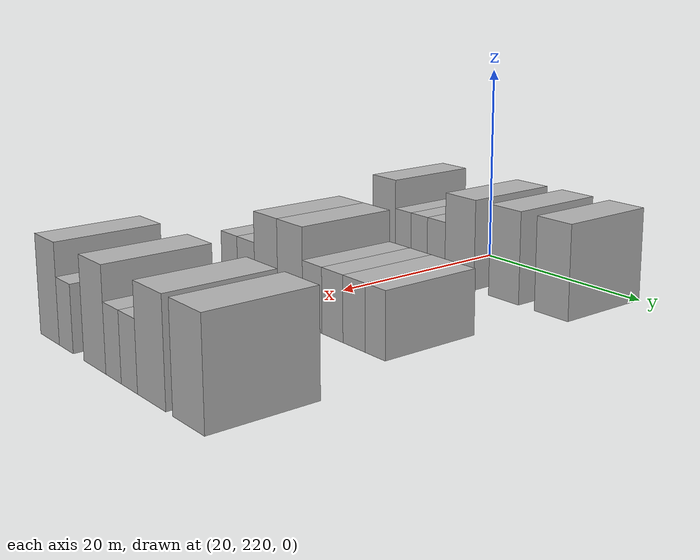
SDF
<sdf version="1.6">
 <world name="default">
  <model name="building_108">
   <static>1</static>
   <pose>25.0000 214.1568 0 0.000000 0.000000 0.000000</pose>
   <link name="link">
    <pose>0 0 4.50 0 0 0</pose>
    <collision name="collision"><geometry><box><size>10.0000 3.6910 9.0000</size></box></geometry></collision>
    <visual name="visual">
     <cast_shadows>0</cast_shadows>
     <geometry><box><size>10.0000 3.6910 9.0000</size></box></geometry>
     <material>
      <script>
       <uri>model://HANNAS_wall/materials/scripts</uri>
       <uri>model://HANNAS_wall/materials/textures</uri>
       <name>vrc/HANNAS_wall</name>
      </script>
     </material>
    </visual>
   </link>
  </model>
  <model name="building_109">
   <static>1</static>
   <pose>25.0000 217.2474 0 0.000000 0.000000 0.000000</pose>
   <link name="link">
    <pose>0 0 3.00 0 0 0</pose>
    <collision name="collision"><geometry><box><size>10.0000 2.4903 6.0000</size></box></geometry></collision>
    <visual name="visual">
     <cast_shadows>0</cast_shadows>
     <geometry><box><size>10.0000 2.4903 6.0000</size></box></geometry>
     <material>
      <script>
       <uri>model://HANNAS_wall/materials/scripts</uri>
       <uri>model://HANNAS_wall/materials/textures</uri>
       <name>vrc/HANNAS_wall</name>
      </script>
     </material>
    </visual>
   </link>
  </model>
  <model name="building_110">
   <static>1</static>
   <pose>25.0000 219.7412 0 0.000000 0.000000 0.000000</pose>
   <link name="link">
    <pose>0 0 3.00 0 0 0</pose>
    <collision name="collision"><geometry><box><size>10.0000 2.4972 6.0000</size></box></geometry></collision>
    <visual name="visual">
     <cast_shadows>0</cast_shadows>
     <geometry><box><size>10.0000 2.4972 6.0000</size></box></geometry>
     <material>
      <script>
       <uri>model://HANNAS_wall/materials/scripts</uri>
       <uri>model://HANNAS_wall/materials/textures</uri>
       <name>vrc/HANNAS_wall</name>
      </script>
     </material>
    </visual>
   </link>
  </model>
  <model name="building_111">
   <static>1</static>
   <pose>25.0000 222.3231 0 0.000000 0.000000 0.000000</pose>
   <link name="link">
    <pose>0 0 3.00 0 0 0</pose>
    <collision name="collision"><geometry><box><size>10.0000 2.6667 6.0000</size></box></geometry></collision>
    <visual name="visual">
     <cast_shadows>0</cast_shadows>
     <geometry><box><size>10.0000 2.6667 6.0000</size></box></geometry>
     <material>
      <script>
       <uri>model://HANNAS_wall/materials/scripts</uri>
       <uri>model://HANNAS_wall/materials/textures</uri>
       <name>vrc/HANNAS_wall</name>
      </script>
     </material>
    </visual>
   </link>
  </model>
  <model name="building_112">
   <static>1</static>
   <pose>25.0000 225.7544 0 0.000000 0.000000 0.000000</pose>
   <link name="link">
    <pose>0 0 4.50 0 0 0</pose>
    <collision name="collision"><geometry><box><size>10.0000 4.1959 9.0000</size></box></geometry></collision>
    <visual name="visual">
     <cast_shadows>0</cast_shadows>
     <geometry><box><size>10.0000 4.1959 9.0000</size></box></geometry>
     <material>
      <script>
       <uri>model://HANNAS_wall/materials/scripts</uri>
       <uri>model://HANNAS_wall/materials/textures</uri>
       <name>vrc/HANNAS_wall</name>
      </script>
     </material>
    </visual>
   </link>
  </model>
  <model name="building_113">
   <static>1</static>
   <pose>25.0000 231.8361 0 0.000000 0.000000 0.000000</pose>
   <link name="link">
    <pose>0 0 4.50 0 0 0</pose>
    <collision name="collision"><geometry><box><size>10.0000 3.9677 9.0000</size></box></geometry></collision>
    <visual name="visual">
     <cast_shadows>0</cast_shadows>
     <geometry><box><size>10.0000 3.9677 9.0000</size></box></geometry>
     <material>
      <script>
       <uri>model://HANNAS_wall/materials/scripts</uri>
       <uri>model://HANNAS_wall/materials/textures</uri>
       <name>vrc/HANNAS_wall</name>
      </script>
     </material>
    </visual>
   </link>
  </model>
  <model name="building_114">
   <static>1</static>
   <pose>25.0000 237.8687 0 0.000000 0.000000 0.000000</pose>
   <link name="link">
    <pose>0 0 4.50 0 0 0</pose>
    <collision name="collision"><geometry><box><size>10.0000 4.0975 9.0000</size></box></geometry></collision>
    <visual name="visual">
     <cast_shadows>0</cast_shadows>
     <geometry><box><size>10.0000 4.0975 9.0000</size></box></geometry>
     <material>
      <script>
       <uri>model://HANNAS_wall/materials/scripts</uri>
       <uri>model://HANNAS_wall/materials/textures</uri>
       <name>vrc/HANNAS_wall</name>
      </script>
     </material>
    </visual>
   </link>
  </model>
  <model name="building_226">
   <static>1</static>
   <pose>44.0000 213.8315 0 0.000000 0.000000 0.000000</pose>
   <link name="link">
    <pose>0 0 3.00 0 0 0</pose>
    <collision name="collision"><geometry><box><size>10.0000 2.7948 6.0000</size></box></geometry></collision>
    <visual name="visual">
     <cast_shadows>0</cast_shadows>
     <geometry><box><size>10.0000 2.7948 6.0000</size></box></geometry>
     <material>
      <script>
       <uri>model://HANNAS_wall/materials/scripts</uri>
       <uri>model://HANNAS_wall/materials/textures</uri>
       <name>vrc/HANNAS_wall</name>
      </script>
     </material>
    </visual>
   </link>
  </model>
  <model name="building_227">
   <static>1</static>
   <pose>44.0000 216.7019 0 0.000000 0.000000 0.000000</pose>
   <link name="link">
    <pose>0 0 3.00 0 0 0</pose>
    <collision name="collision"><geometry><box><size>10.0000 2.9460 6.0000</size></box></geometry></collision>
    <visual name="visual">
     <cast_shadows>0</cast_shadows>
     <geometry><box><size>10.0000 2.9460 6.0000</size></box></geometry>
     <material>
      <script>
       <uri>model://HANNAS_wall/materials/scripts</uri>
       <uri>model://HANNAS_wall/materials/textures</uri>
       <name>vrc/HANNAS_wall</name>
      </script>
     </material>
    </visual>
   </link>
  </model>
  <model name="building_228">
   <static>1</static>
   <pose>44.0000 220.0485 0 0.000000 0.000000 0.000000</pose>
   <link name="link">
    <pose>0 0 4.50 0 0 0</pose>
    <collision name="collision"><geometry><box><size>10.0000 3.7472 9.0000</size></box></geometry></collision>
    <visual name="visual">
     <cast_shadows>0</cast_shadows>
     <geometry><box><size>10.0000 3.7472 9.0000</size></box></geometry>
     <material>
      <script>
       <uri>model://HANNAS_wall/materials/scripts</uri>
       <uri>model://HANNAS_wall/materials/textures</uri>
       <name>vrc/HANNAS_wall</name>
      </script>
     </material>
    </visual>
   </link>
  </model>
  <model name="building_229">
   <static>1</static>
   <pose>44.0000 223.8509 0 0.000000 0.000000 0.000000</pose>
   <link name="link">
    <pose>0 0 4.50 0 0 0</pose>
    <collision name="collision"><geometry><box><size>10.0000 3.8575 9.0000</size></box></geometry></collision>
    <visual name="visual">
     <cast_shadows>0</cast_shadows>
     <geometry><box><size>10.0000 3.8575 9.0000</size></box></geometry>
     <material>
      <script>
       <uri>model://HANNAS_wall/materials/scripts</uri>
       <uri>model://HANNAS_wall/materials/textures</uri>
       <name>vrc/HANNAS_wall</name>
      </script>
     </material>
    </visual>
   </link>
  </model>
  <model name="building_230">
   <static>1</static>
   <pose>44.0000 227.1933 0 0.000000 0.000000 0.000000</pose>
   <link name="link">
    <pose>0 0 3.00 0 0 0</pose>
    <collision name="collision"><geometry><box><size>10.0000 2.8275 6.0000</size></box></geometry></collision>
    <visual name="visual">
     <cast_shadows>0</cast_shadows>
     <geometry><box><size>10.0000 2.8275 6.0000</size></box></geometry>
     <material>
      <script>
       <uri>model://HANNAS_wall/materials/scripts</uri>
       <uri>model://HANNAS_wall/materials/textures</uri>
       <name>vrc/HANNAS_wall</name>
      </script>
     </material>
    </visual>
   </link>
  </model>
  <model name="building_231">
   <static>1</static>
   <pose>44.0000 230.0925 0 0.000000 0.000000 0.000000</pose>
   <link name="link">
    <pose>0 0 3.00 0 0 0</pose>
    <collision name="collision"><geometry><box><size>10.0000 2.9708 6.0000</size></box></geometry></collision>
    <visual name="visual">
     <cast_shadows>0</cast_shadows>
     <geometry><box><size>10.0000 2.9708 6.0000</size></box></geometry>
     <material>
      <script>
       <uri>model://HANNAS_wall/materials/scripts</uri>
       <uri>model://HANNAS_wall/materials/textures</uri>
       <name>vrc/HANNAS_wall</name>
      </script>
     </material>
    </visual>
   </link>
  </model>
  <model name="building_232">
   <static>1</static>
   <pose>44.0000 233.0729 0 0.000000 0.000000 0.000000</pose>
   <link name="link">
    <pose>0 0 3.00 0 0 0</pose>
    <collision name="collision"><geometry><box><size>10.0000 2.9900 6.0000</size></box></geometry></collision>
    <visual name="visual">
     <cast_shadows>0</cast_shadows>
     <geometry><box><size>10.0000 2.9900 6.0000</size></box></geometry>
     <material>
      <script>
       <uri>model://HANNAS_wall/materials/scripts</uri>
       <uri>model://HANNAS_wall/materials/textures</uri>
       <name>vrc/HANNAS_wall</name>
      </script>
     </material>
    </visual>
   </link>
  </model>
  <model name="building_233">
   <static>1</static>
   <pose>44.0000 235.8812 0 0.000000 0.000000 0.000000</pose>
   <link name="link">
    <pose>0 0 3.00 0 0 0</pose>
    <collision name="collision"><geometry><box><size>10.0000 2.6266 6.0000</size></box></geometry></collision>
    <visual name="visual">
     <cast_shadows>0</cast_shadows>
     <geometry><box><size>10.0000 2.6266 6.0000</size></box></geometry>
     <material>
      <script>
       <uri>model://HANNAS_wall/materials/scripts</uri>
       <uri>model://HANNAS_wall/materials/textures</uri>
       <name>vrc/HANNAS_wall</name>
      </script>
     </material>
    </visual>
   </link>
  </model>
  <model name="building_344">
   <static>1</static>
   <pose>63.0000 215.1241 0 0.000000 0.000000 0.000000</pose>
   <link name="link">
    <pose>0 0 4.50 0 0 0</pose>
    <collision name="collision"><geometry><box><size>10.0000 3.7750 9.0000</size></box></geometry></collision>
    <visual name="visual">
     <cast_shadows>0</cast_shadows>
     <geometry><box><size>10.0000 3.7750 9.0000</size></box></geometry>
     <material>
      <script>
       <uri>model://HANNAS_wall/materials/scripts</uri>
       <uri>model://HANNAS_wall/materials/textures</uri>
       <name>vrc/HANNAS_wall</name>
      </script>
     </material>
    </visual>
   </link>
  </model>
  <model name="building_345">
   <static>1</static>
   <pose>63.0000 218.3463 0 0.000000 0.000000 0.000000</pose>
   <link name="link">
    <pose>0 0 3.00 0 0 0</pose>
    <collision name="collision"><geometry><box><size>10.0000 2.6695 6.0000</size></box></geometry></collision>
    <visual name="visual">
     <cast_shadows>0</cast_shadows>
     <geometry><box><size>10.0000 2.6695 6.0000</size></box></geometry>
     <material>
      <script>
       <uri>model://HANNAS_wall/materials/scripts</uri>
       <uri>model://HANNAS_wall/materials/textures</uri>
       <name>vrc/HANNAS_wall</name>
      </script>
     </material>
    </visual>
   </link>
  </model>
  <model name="building_346">
   <static>1</static>
   <pose>63.0000 223.6335 0 0.000000 0.000000 0.000000</pose>
   <link name="link">
    <pose>0 0 4.50 0 0 0</pose>
    <collision name="collision"><geometry><box><size>10.0000 3.9049 9.0000</size></box></geometry></collision>
    <visual name="visual">
     <cast_shadows>0</cast_shadows>
     <geometry><box><size>10.0000 3.9049 9.0000</size></box></geometry>
     <material>
      <script>
       <uri>model://HANNAS_wall/materials/scripts</uri>
       <uri>model://HANNAS_wall/materials/textures</uri>
       <name>vrc/HANNAS_wall</name>
      </script>
     </material>
    </visual>
   </link>
  </model>
  <model name="building_347">
   <static>1</static>
   <pose>63.0000 226.8824 0 0.000000 0.000000 0.000000</pose>
   <link name="link">
    <pose>0 0 3.00 0 0 0</pose>
    <collision name="collision"><geometry><box><size>10.0000 2.5929 6.0000</size></box></geometry></collision>
    <visual name="visual">
     <cast_shadows>0</cast_shadows>
     <geometry><box><size>10.0000 2.5929 6.0000</size></box></geometry>
     <material>
      <script>
       <uri>model://HANNAS_wall/materials/scripts</uri>
       <uri>model://HANNAS_wall/materials/textures</uri>
       <name>vrc/HANNAS_wall</name>
      </script>
     </material>
    </visual>
   </link>
  </model>
  <model name="building_348">
   <static>1</static>
   <pose>63.0000 229.4863 0 0.000000 0.000000 0.000000</pose>
   <link name="link">
    <pose>0 0 3.00 0 0 0</pose>
    <collision name="collision"><geometry><box><size>10.0000 2.6150 6.0000</size></box></geometry></collision>
    <visual name="visual">
     <cast_shadows>0</cast_shadows>
     <geometry><box><size>10.0000 2.6150 6.0000</size></box></geometry>
     <material>
      <script>
       <uri>model://HANNAS_wall/materials/scripts</uri>
       <uri>model://HANNAS_wall/materials/textures</uri>
       <name>vrc/HANNAS_wall</name>
      </script>
     </material>
    </visual>
   </link>
  </model>
  <model name="building_349">
   <static>1</static>
   <pose>63.0000 232.9368 0 0.000000 0.000000 0.000000</pose>
   <link name="link">
    <pose>0 0 4.50 0 0 0</pose>
    <collision name="collision"><geometry><box><size>10.0000 4.2859 9.0000</size></box></geometry></collision>
    <visual name="visual">
     <cast_shadows>0</cast_shadows>
     <geometry><box><size>10.0000 4.2859 9.0000</size></box></geometry>
     <material>
      <script>
       <uri>model://HANNAS_wall/materials/scripts</uri>
       <uri>model://HANNAS_wall/materials/textures</uri>
       <name>vrc/HANNAS_wall</name>
      </script>
     </material>
    </visual>
   </link>
  </model>
  <model name="building_350">
   <static>1</static>
   <pose>63.0000 238.2812 0 0.000000 0.000000 0.000000</pose>
   <link name="link">
    <pose>0 0 4.50 0 0 0</pose>
    <collision name="collision"><geometry><box><size>10.0000 4.4029 9.0000</size></box></geometry></collision>
    <visual name="visual">
     <cast_shadows>0</cast_shadows>
     <geometry><box><size>10.0000 4.4029 9.0000</size></box></geometry>
     <material>
      <script>
       <uri>model://HANNAS_wall/materials/scripts</uri>
       <uri>model://HANNAS_wall/materials/textures</uri>
       <name>vrc/HANNAS_wall</name>
      </script>
     </material>
    </visual>
   </link>
  </model>
 </world>
</sdf>
